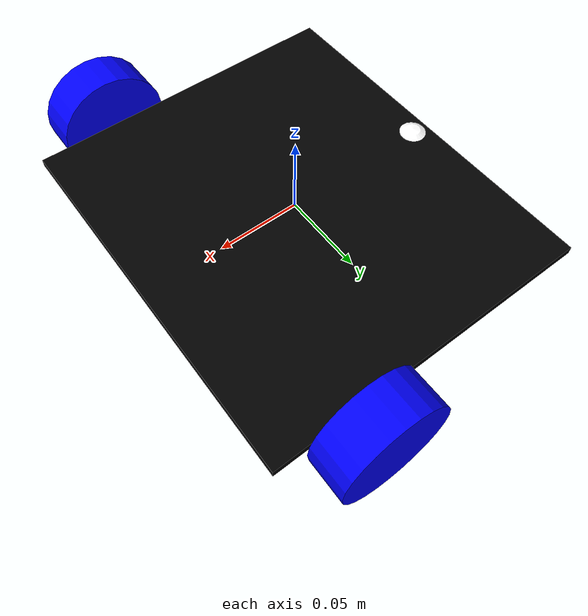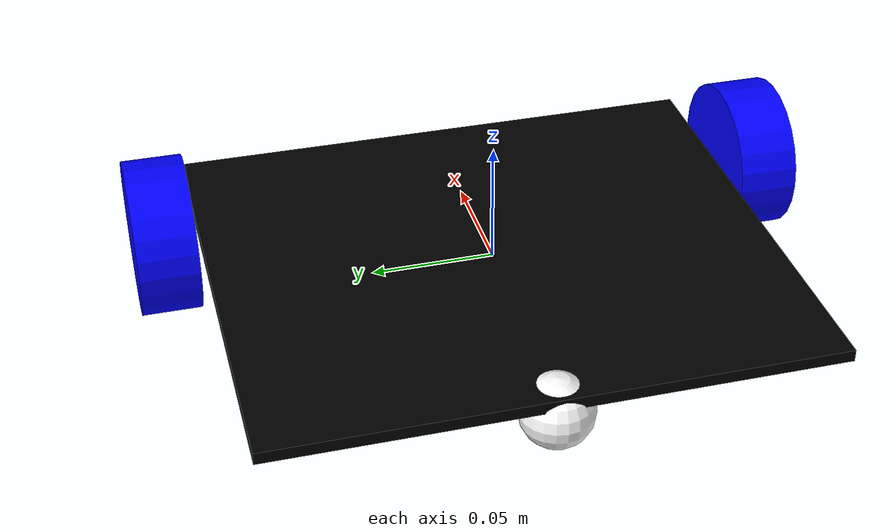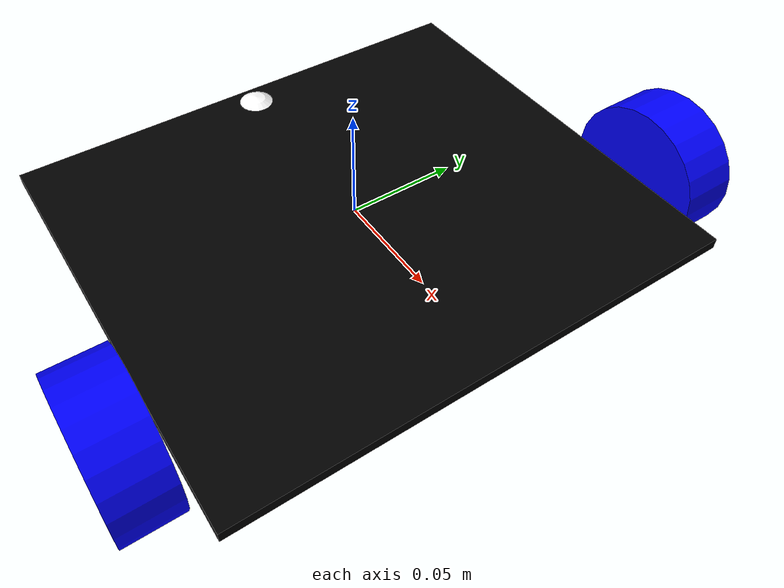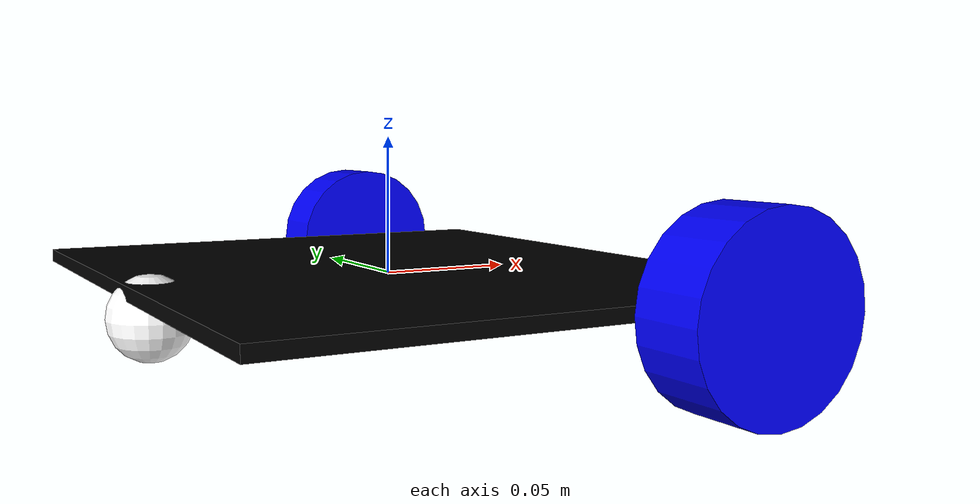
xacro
<?xml version="1.0"?>
<robot name="visual" xmlns:xacro="http://www.ros.org/wiki/xacro">

	<!-- Цвета -->
	<material name="blue">
		<color rgba="0 0 1 1"/>
	</material>
	<material name="black">
		<color rgba="0 0 0 1"/>
	</material>
	<material name="white">
		<color rgba="1 1 1 1"/>
	</material>

	<!-- Основная платформа (шасси) -->
	<link name="base_link">
		<visual>
			<geometry>
				<box size="0.2 0.23 0.005"/>
			</geometry>
			<material name="black"/>
		</visual>
		<collision>
			<geometry>
				<box size="0.2 0.23 0.005"/>
			</geometry>
		</collision>
		<inertial>
			<mass value="10"/>
			<inertia ixx="1e-3" ixy="0" ixz="0"
			         iyy="1e-3" iyz="0" izz="1e-3"/>
		</inertial>
	</link>

	<!-- Промежуточное звено (left_base) -->
	<link name="left_base">
		<visual>
			<geometry>
				<box size="0.01 0.01 0.01"/>
			</geometry>
		</visual>
	</link>
	<joint name="left_base_joint" type="fixed">
		<parent link="base_link"/>
		<child link="left_base"/>
		<origin xyz="0.05 0.13 0"/>
	</joint>

	<!-- Левое колесо -->
	<link name="left_wheel">
		<visual>
			<origin rpy="1.5707963 0 0" xyz="0 0 0"/>
			<geometry>
				<cylinder length="0.025" radius="0.0325"/>
			</geometry>
			<material name="blue"/>
		</visual>
		<collision>
			<origin rpy="1.5707963 0 0" xyz="0 0 0"/>
			<geometry>
				<cylinder length="0.025" radius="0.0325"/>
			</geometry>
		</collision>
		<inertial>
			<mass value="1"/>
			<inertia ixx="1e-3" ixy="0" ixz="0"
			         iyy="1e-3" iyz="0" izz="1e-3"/>
		</inertial>
	</link>
	<joint name="left_wheel_joint" type="continuous">
		<axis xyz="0 1 0"/>
		<parent link="left_base"/>
		<child link="left_wheel"/>
		<origin xyz="0 0 0" rpy="0 0 0"/>
	</joint>

	<!-- Промежуточное звено (right_base) -->
	<link name="right_base">
		<visual>
			<geometry>
				<box size="0.01 0.01 0.01"/>
			</geometry>
		</visual>
	</link>
	<joint name="right_base_joint" type="fixed">
		<parent link="base_link"/>
		<child link="right_base"/>
		<origin xyz="0.05 -0.13 0"/>
	</joint>

	<!-- Правое колесо -->
	<link name="right_wheel">
		<visual>
			<origin rpy="1.5707963 0 0" xyz="0 0 0"/>
			<geometry>
				<cylinder length="0.025" radius="0.0325"/>
			</geometry>
			<material name="blue"/>
		</visual>
		<collision>
			<origin rpy="1.5707963 0 0" xyz="0 0 0"/>
			<geometry>
				<cylinder length="0.025" radius="0.0325"/>
			</geometry>
		</collision>
		<inertial>
			<mass value="1"/>
			<inertia ixx="1e-3" ixy="0" ixz="0"
			         iyy="1e-3" iyz="0" izz="1e-3"/>
		</inertial>
	</link>
	<joint name="right_wheel_joint" type="continuous">
		<axis xyz="0 1 0"/>
		<parent link="right_base"/>
		<child link="right_wheel"/>
		<origin xyz="0 0 0" rpy="0 0 0"/>
	</joint>

	<!-- Опорный ролик (caster) -->
	<link name="caster_wheel">
		<visual>
			<origin xyz="0 0 0" rpy="0 0 0"/>
			<geometry>
				<sphere radius="0.015"/>
			</geometry>
			<material name="white"/>
		</visual>
		<collision>
			<origin xyz="0 0 0" rpy="0 0 0"/>
			<geometry>
				<sphere radius="0.015"/>
			</geometry>
		</collision>
		<inertial>
			<mass value="0.1"/>
			<inertia ixx="1e-4" ixy="0" ixz="0"
			         iyy="1e-3" iyz="0" izz="1e-3"/>
		</inertial>
	</link>
	<joint name="caster_wheel_joint" type="fixed">
		<parent link="base_link"/>
		<child link="caster_wheel"/>
		<origin xyz="-0.09 0 -0.01"/>
	</joint>

	<!-- Описание аппаратной части для ros2_control -->
	<ros2_control name="my_robot_hardware" type="system">
		<hardware>
			<plugin>mock_components/GenericSystem</plugin>
			<param name="update_rate">50</param>
			<param name="calculate_dynamics">true</param>
		</hardware>
		<joint name="left_wheel_joint">
			<command_interface name="velocity"/>
			<state_interface name="position"/>
			<state_interface name="velocity"/>
		</joint>
		<joint name="right_wheel_joint">
			<command_interface name="velocity"/>
			<state_interface name="position"/>
			<state_interface name="velocity"/>
		</joint>
	</ros2_control>

</robot>
